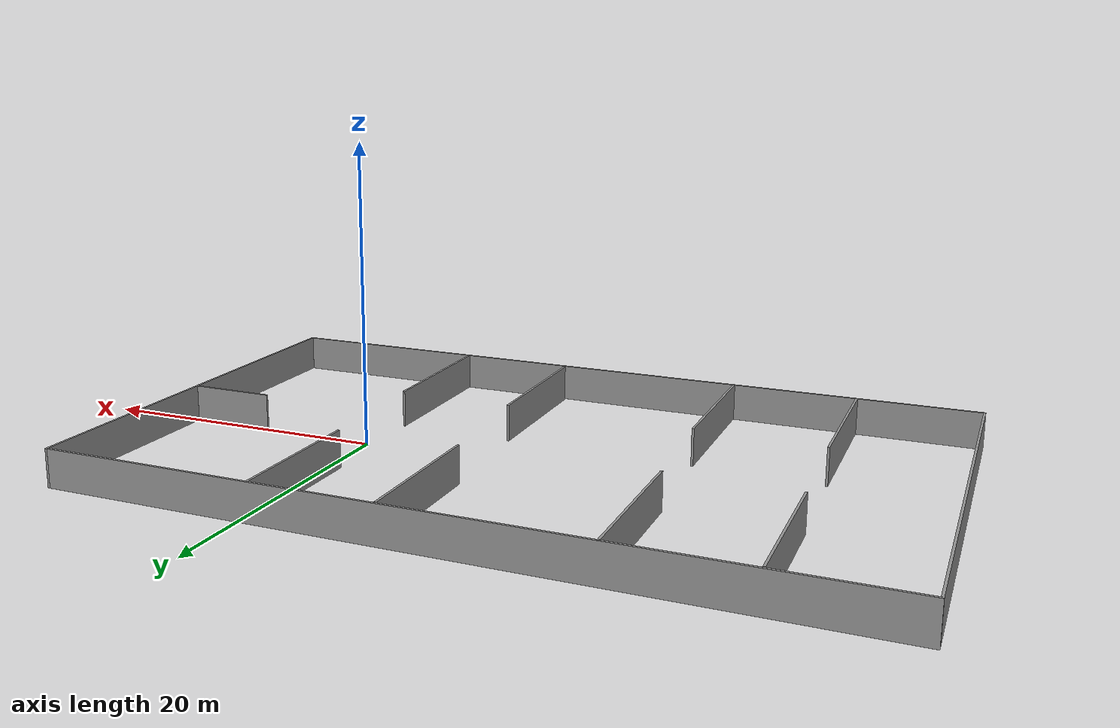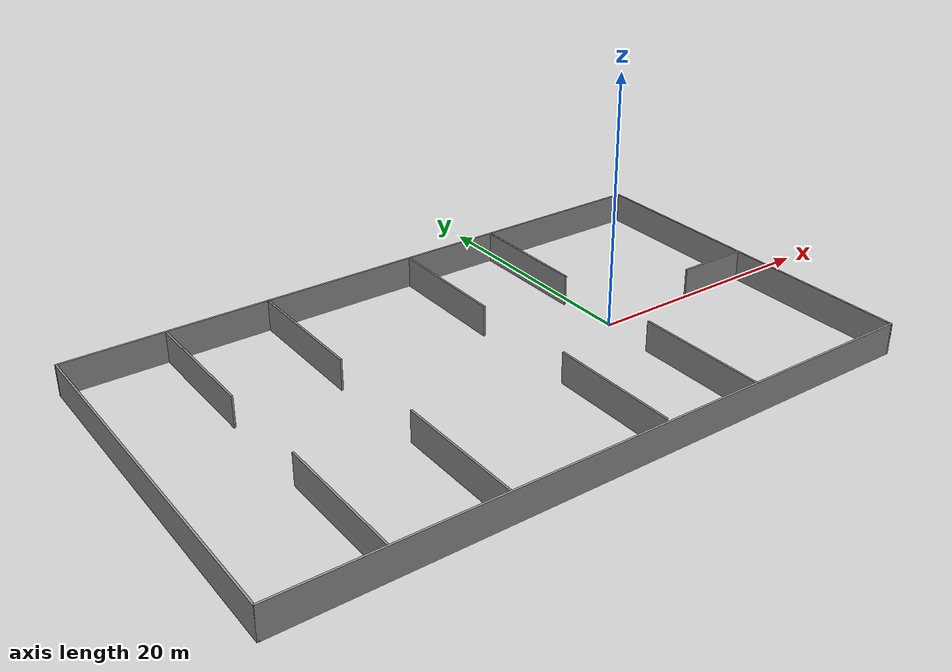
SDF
<?xml version='1.0'?>
<sdf version='1.7'>
  <model name='olha_world'>
    <pose>-11.9288 -0.340063 0 0 -0 0</pose>
    <link name='Wall_12'>
      <collision name='Wall_12_Collision'>
        <geometry>
          <box>
            <size>11 0.15 2.5</size>
          </box>
        </geometry>
        <pose>0 0 1.25 0 -0 0</pose>
      </collision>
      <visual name='Wall_12_Visual'>
        <pose>0 0 1.25 0 -0 0</pose>
        <geometry>
          <box>
            <size>11 0.15 2.5</size>
          </box>
        </geometry>
        <material>
          <script>
            <uri>file://media/materials/scripts/gazebo.material</uri>
            <name>Gazebo/Grey</name>
          </script>
          <ambient>1 1 1 1</ambient>
        </material>
        <meta>
          <layer>0</layer>
        </meta>
      </visual>
      <pose>-17.3885 -9.38848 0 0 -0 1.5708</pose>
    </link>
    <link name='Wall_14'>
      <collision name='Wall_14_Collision'>
        <geometry>
          <box>
            <size>10.75 0.15 2.5</size>
          </box>
        </geometry>
        <pose>0 0 1.25 0 -0 0</pose>
      </collision>
      <visual name='Wall_14_Visual'>
        <pose>0 0 1.25 0 -0 0</pose>
        <geometry>
          <box>
            <size>10.75 0.15 2.5</size>
          </box>
        </geometry>
        <material>
          <script>
            <uri>file://media/materials/scripts/gazebo.material</uri>
            <name>Gazebo/Grey</name>
          </script>
          <ambient>1 1 1 1</ambient>
        </material>
        <meta>
          <layer>0</layer>
        </meta>
      </visual>
      <pose>-8.95625 -9.51038 0 0 -0 -1.5708</pose>
    </link>
    <link name='Wall_2'>
      <collision name='Wall_2_Collision'>
        <geometry>
          <box>
            <size>30 0.15 2.5</size>
          </box>
        </geometry>
        <pose>0 0 1.25 0 -0 0</pose>
      </collision>
      <visual name='Wall_2_Visual'>
        <pose>0 0 1.25 0 -0 0</pose>
        <geometry>
          <box>
            <size>30 0.15 2.5</size>
          </box>
        </geometry>
        <material>
          <script>
            <uri>file://media/materials/scripts/gazebo.material</uri>
            <name>Gazebo/Grey</name>
          </script>
          <ambient>1 1 1 1</ambient>
        </material>
        <meta>
          <layer>0</layer>
        </meta>
      </visual>
      <pose>-25.55 0 0 0 -0 -1.5708</pose>
    </link>
    <link name='Wall_22'>
      <collision name='Wall_22_Collision'>
        <geometry>
          <box>
            <size>10.6418 0.15 2.5</size>
          </box>
        </geometry>
        <pose>0 0 1.25 0 -0 0</pose>
      </collision>
      <visual name='Wall_22_Visual'>
        <pose>0 0 1.25 0 -0 0</pose>
        <geometry>
          <box>
            <size>10.6418 0.15 2.5</size>
          </box>
        </geometry>
        <material>
          <script>
            <uri>file://media/materials/scripts/gazebo.material</uri>
            <name>Gazebo/Grey</name>
          </script>
          <ambient>1 1 1 1</ambient>
        </material>
        <meta>
          <layer>0</layer>
        </meta>
      </visual>
      <pose>-17.5655 9.47716 0 0 -0 -1.5708</pose>
    </link>
    <link name='Wall_24'>
      <collision name='Wall_24_Collision'>
        <geometry>
          <box>
            <size>10.8918 0.15 2.5</size>
          </box>
        </geometry>
        <pose>0 0 1.25 0 -0 0</pose>
      </collision>
      <visual name='Wall_24_Visual'>
        <pose>0 0 1.25 0 -0 0</pose>
        <geometry>
          <box>
            <size>10.8918 0.15 2.5</size>
          </box>
        </geometry>
        <material>
          <script>
            <uri>file://media/materials/scripts/gazebo.material</uri>
            <name>Gazebo/Grey</name>
          </script>
          <ambient>1 1 1 1</ambient>
        </material>
        <meta>
          <layer>0</layer>
        </meta>
      </visual>
      <pose>-9.38319 9.51986 0 0 -0 1.5708</pose>
    </link>
    <link name='Wall_28'>
      <collision name='Wall_28_Collision'>
        <geometry>
          <box>
            <size>10 0.15 2.5</size>
          </box>
        </geometry>
        <pose>0 0 1.25 0 -0 0</pose>
      </collision>
      <visual name='Wall_28_Visual'>
        <pose>0 0 1.25 0 -0 0</pose>
        <geometry>
          <box>
            <size>10 0.15 2.5</size>
          </box>
        </geometry>
        <material>
          <script>
            <uri>file://media/materials/scripts/gazebo.material</uri>
            <name>Gazebo/Grey</name>
          </script>
          <ambient>1 1 1 1</ambient>
        </material>
        <meta>
          <layer>0</layer>
        </meta>
      </visual>
      <pose>11.3109 9.9201 0 0 -0 1.5708</pose>
    </link>
    <link name='Wall_3'>
      <collision name='Wall_3_Collision'>
        <geometry>
          <box>
            <size>51.25 0.15 2.5</size>
          </box>
        </geometry>
        <pose>0 0 1.25 0 -0 0</pose>
      </collision>
      <visual name='Wall_3_Visual'>
        <pose>0 0 1.25 0 -0 0</pose>
        <geometry>
          <box>
            <size>51.25 0.15 2.5</size>
          </box>
        </geometry>
        <material>
          <script>
            <uri>file://media/materials/scripts/gazebo.material</uri>
            <name>Gazebo/Grey</name>
          </script>
          <ambient>1 1 1 1</ambient>
        </material>
        <meta>
          <layer>0</layer>
        </meta>
      </visual>
      <pose>0 -14.925 0 0 -0 0</pose>
    </link>
    <link name='Wall_30'>
      <collision name='Wall_30_Collision'>
        <geometry>
          <box>
            <size>10.2534 0.15 2.5</size>
          </box>
        </geometry>
        <pose>0 0 1.25 0 -0 0</pose>
      </collision>
      <visual name='Wall_30_Visual'>
        <pose>0 0 1.25 0 -0 0</pose>
        <geometry>
          <box>
            <size>10.2534 0.15 2.5</size>
          </box>
        </geometry>
        <material>
          <script>
            <uri>file://media/materials/scripts/gazebo.material</uri>
            <name>Gazebo/Grey</name>
          </script>
          <ambient>1 1 1 1</ambient>
        </material>
        <meta>
          <layer>0</layer>
        </meta>
      </visual>
      <pose>3.20948 9.6868 0 0 -0 -1.5708</pose>
    </link>
    <link name='Wall_32'>
      <collision name='Wall_32_Collision'>
        <geometry>
          <box>
            <size>10.5 0.15 2.5</size>
          </box>
        </geometry>
        <pose>0 0 1.25 0 -0 0</pose>
      </collision>
      <visual name='Wall_32_Visual'>
        <pose>0 0 1.25 0 -0 0</pose>
        <geometry>
          <box>
            <size>10.5 0.15 2.5</size>
          </box>
        </geometry>
        <material>
          <script>
            <uri>file://media/materials/scripts/gazebo.material</uri>
            <name>Gazebo/Grey</name>
          </script>
          <ambient>1 1 1 1</ambient>
        </material>
        <meta>
          <layer>0</layer>
        </meta>
      </visual>
      <pose>3.6911 -9.36613 0 0 -0 1.5708</pose>
    </link>
    <link name='Wall_34'>
      <collision name='Wall_34_Collision'>
        <geometry>
          <box>
            <size>10.75 0.15 2.5</size>
          </box>
        </geometry>
        <pose>0 0 1.25 0 -0 0</pose>
      </collision>
      <visual name='Wall_34_Visual'>
        <pose>0 0 1.25 0 -0 0</pose>
        <geometry>
          <box>
            <size>10.75 0.15 2.5</size>
          </box>
        </geometry>
        <material>
          <script>
            <uri>file://media/materials/scripts/gazebo.material</uri>
            <name>Gazebo/Grey</name>
          </script>
          <ambient>1 1 1 1</ambient>
        </material>
        <meta>
          <layer>0</layer>
        </meta>
      </visual>
      <pose>11.5764 -9.6153 0 0 -0 1.5708</pose>
    </link>
    <link name='Wall_36'>
      <collision name='Wall_36_Collision'>
        <geometry>
          <box>
            <size>5.75 0.15 2.5</size>
          </box>
        </geometry>
        <pose>0 0 1.25 0 -0 0</pose>
      </collision>
      <visual name='Wall_36_Visual'>
        <pose>0 0 1.25 0 -0 0</pose>
        <geometry>
          <box>
            <size>5.75 0.15 2.5</size>
          </box>
        </geometry>
        <material>
          <script>
            <uri>file://media/materials/scripts/gazebo.material</uri>
            <name>Gazebo/Grey</name>
          </script>
          <ambient>1 1 1 1</ambient>
        </material>
        <meta>
          <layer>0</layer>
        </meta>
      </visual>
      <pose>22.6356 0.244967 0 0 -0 3.14159</pose>
    </link>
    <link name='Wall_4'>
      <collision name='Wall_4_Collision'>
        <geometry>
          <box>
            <size>30 0.15 2.5</size>
          </box>
        </geometry>
        <pose>0 0 1.25 0 -0 0</pose>
      </collision>
      <visual name='Wall_4_Visual'>
        <pose>0 0 1.25 0 -0 0</pose>
        <geometry>
          <box>
            <size>30 0.15 2.5</size>
          </box>
        </geometry>
        <material>
          <script>
            <uri>file://media/materials/scripts/gazebo.material</uri>
            <name>Gazebo/Grey</name>
          </script>
          <ambient>1 1 1 1</ambient>
        </material>
        <meta>
          <layer>0</layer>
        </meta>
      </visual>
      <pose>25.55 0 0 0 -0 1.5708</pose>
    </link>
    <link name='Wall_5'>
      <collision name='Wall_5_Collision'>
        <geometry>
          <box>
            <size>51.25 0.15 2.5</size>
          </box>
        </geometry>
        <pose>0 0 1.25 0 -0 0</pose>
      </collision>
      <visual name='Wall_5_Visual'>
        <pose>0 0 1.25 0 -0 0</pose>
        <geometry>
          <box>
            <size>51.25 0.15 2.5</size>
          </box>
        </geometry>
        <material>
          <script>
            <uri>file://media/materials/scripts/gazebo.material</uri>
            <name>Gazebo/Grey</name>
          </script>
          <ambient>1 1 1 1</ambient>
        </material>
        <meta>
          <layer>0</layer>
        </meta>
      </visual>
      <pose>0 14.925 0 0 -0 3.14159</pose>
    </link>
    <static>1</static>
  </model>
</sdf>
